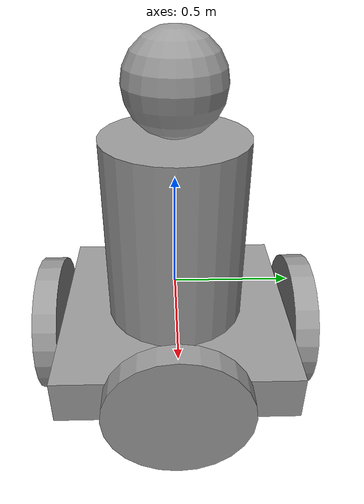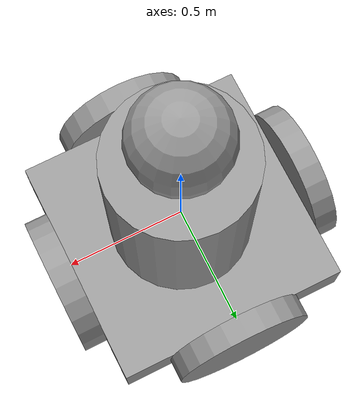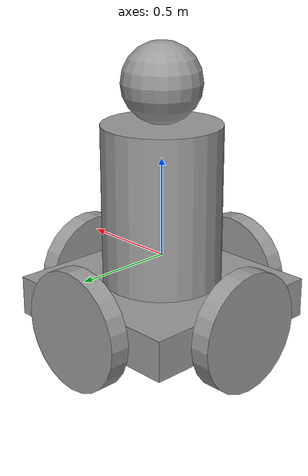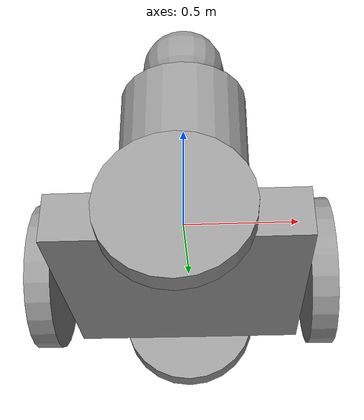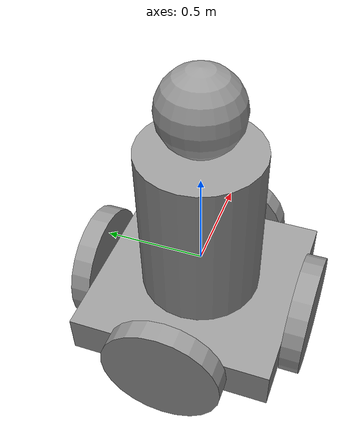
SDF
<?xml version='1.0'?>
<sdf version='1.6'>
  <model name='humanoid_robot'>
    <link name='link_2'>
      <pose frame=''>-0 -0 -0.228571 0 -0 0</pose>
      <inertial>
        <mass>1</mass>
        <inertia>
          <ixx>0.166667</ixx>
          <ixy>0</ixy>
          <ixz>0</ixz>
          <iyy>0.166667</iyy>
          <iyz>0</iyz>
          <izz>0.166667</izz>
        </inertia>
        <pose frame=''>0 0 0 0 -0 0</pose>
      </inertial>
      <gravity>1</gravity>
      <self_collide>0</self_collide>
      <kinematic>0</kinematic>
      <visual name='visual'>
        <pose frame=''>0 0 0 0 -0 0</pose>
        <geometry>
          <box>
            <size>1 1 0.2</size>
          </box>
        </geometry>
        <material>
          <lighting>1</lighting>
          <script>
            <uri>file://media/materials/scripts/gazebo.material</uri>
            <name>Gazebo/Grey</name>
          </script>
          <ambient>0.3 0.3 0.3 1</ambient>
          <diffuse>0.7 0.7 0.7 1</diffuse>
          <specular>0.01 0.01 0.01 1</specular>
          <emissive>0 0 0 1</emissive>
          <shader type='vertex'>
            <normal_map>__default__</normal_map>
          </shader>
        </material>
        <cast_shadows>1</cast_shadows>
        <transparency>0</transparency>
      </visual>
      <collision name='collision'>
        <laser_retro>0</laser_retro>
        <max_contacts>10</max_contacts>
        <pose frame=''>0 0 0 0 -0 0</pose>
        <geometry>
          <box>
            <size>1 1 0.2</size>
          </box>
        </geometry>
        <surface>
          <friction>
            <ode>
              <mu>1</mu>
              <mu2>1</mu2>
              <fdir1>0 0 0</fdir1>
              <slip1>0</slip1>
              <slip2>0</slip2>
            </ode>
            <torsional>
              <coefficient>1</coefficient>
              <patch_radius>0</patch_radius>
              <surface_radius>0</surface_radius>
              <use_patch_radius>1</use_patch_radius>
              <ode>
                <slip>0</slip>
              </ode>
            </torsional>
          </friction>
          <bounce>
            <restitution_coefficient>0</restitution_coefficient>
            <threshold>1e+06</threshold>
          </bounce>
          <contact>
            <collide_without_contact>0</collide_without_contact>
            <collide_without_contact_bitmask>1</collide_without_contact_bitmask>
            <collide_bitmask>1</collide_bitmask>
            <ode>
              <soft_cfm>0</soft_cfm>
              <soft_erp>0.2</soft_erp>
              <kp>1e+13</kp>
              <kd>1</kd>
              <max_vel>0.01</max_vel>
              <min_depth>0</min_depth>
            </ode>
            <bullet>
              <split_impulse>1</split_impulse>
              <split_impulse_penetration_threshold>-0.01</split_impulse_penetration_threshold>
              <soft_cfm>0</soft_cfm>
              <soft_erp>0.2</soft_erp>
              <kp>1e+13</kp>
              <kd>1</kd>
            </bullet>
          </contact>
        </surface>
      </collision>
    </link>
    <link name='link_3'>
      <pose frame=''>-0 -0.550029 -0.228571 1.5707 -0 0</pose>
      <inertial>
        <mass>1</mass>
        <inertia>
          <ixx>0.145833</ixx>
          <ixy>0</ixy>
          <ixz>0</ixz>
          <iyy>0.145833</iyy>
          <iyz>0</iyz>
          <izz>0.125</izz>
        </inertia>
        <pose frame=''>0 0 0 0 -0 0</pose>
      </inertial>
      <gravity>1</gravity>
      <self_collide>0</self_collide>
      <kinematic>0</kinematic>
      <visual name='visual'>
        <pose frame=''>0 0 0 0 -0 0</pose>
        <geometry>
          <cylinder>
            <radius>0.3</radius>
            <length>0.1</length>
          </cylinder>
        </geometry>
        <material>
          <lighting>1</lighting>
          <script>
            <uri>file://media/materials/scripts/gazebo.material</uri>
            <name>Gazebo/Grey</name>
          </script>
          <ambient>0.3 0.3 0.3 1</ambient>
          <diffuse>0.7 0.7 0.7 1</diffuse>
          <specular>0.01 0.01 0.01 1</specular>
          <emissive>0 0 0 1</emissive>
          <shader type='vertex'>
            <normal_map>__default__</normal_map>
          </shader>
        </material>
        <cast_shadows>1</cast_shadows>
        <transparency>0</transparency>
      </visual>
      <collision name='collision'>
        <laser_retro>0</laser_retro>
        <max_contacts>10</max_contacts>
        <pose frame=''>0 0 0 0 -0 0</pose>
        <geometry>
          <cylinder>
            <radius>0.3</radius>
            <length>0.1</length>
          </cylinder>
        </geometry>
        <surface>
          <friction>
            <ode>
              <mu>1</mu>
              <mu2>1</mu2>
              <fdir1>0 0 0</fdir1>
              <slip1>0</slip1>
              <slip2>0</slip2>
            </ode>
            <torsional>
              <coefficient>1</coefficient>
              <patch_radius>0</patch_radius>
              <surface_radius>0</surface_radius>
              <use_patch_radius>1</use_patch_radius>
              <ode>
                <slip>0</slip>
              </ode>
            </torsional>
          </friction>
          <bounce>
            <restitution_coefficient>0</restitution_coefficient>
            <threshold>1e+06</threshold>
          </bounce>
          <contact>
            <collide_without_contact>0</collide_without_contact>
            <collide_without_contact_bitmask>1</collide_without_contact_bitmask>
            <collide_bitmask>1</collide_bitmask>
            <ode>
              <soft_cfm>0</soft_cfm>
              <soft_erp>0.2</soft_erp>
              <kp>1e+13</kp>
              <kd>1</kd>
              <max_vel>0.01</max_vel>
              <min_depth>0</min_depth>
            </ode>
            <bullet>
              <split_impulse>1</split_impulse>
              <split_impulse_penetration_threshold>-0.01</split_impulse_penetration_threshold>
              <soft_cfm>0</soft_cfm>
              <soft_erp>0.2</soft_erp>
              <kp>1e+13</kp>
              <kd>1</kd>
            </bullet>
          </contact>
        </surface>
      </collision>
    </link>
    <link name='link_3_clone'>
      <pose frame=''>-0 0.550029 -0.228571 1.5707 -0 0</pose>
      <inertial>
        <mass>1</mass>
        <inertia>
          <ixx>0.145833</ixx>
          <ixy>0</ixy>
          <ixz>0</ixz>
          <iyy>0.145833</iyy>
          <iyz>0</iyz>
          <izz>0.125</izz>
        </inertia>
        <pose frame=''>0 0 0 0 -0 0</pose>
      </inertial>
      <self_collide>0</self_collide>
      <kinematic>0</kinematic>
      <visual name='visual'>
        <pose frame=''>0 0 0 0 -0 0</pose>
        <geometry>
          <cylinder>
            <radius>0.3</radius>
            <length>0.1</length>
          </cylinder>
        </geometry>
        <material>
          <lighting>1</lighting>
          <script>
            <uri>file://media/materials/scripts/gazebo.material</uri>
            <name>Gazebo/Grey</name>
          </script>
          <ambient>0.3 0.3 0.3 1</ambient>
          <diffuse>0.7 0.7 0.7 1</diffuse>
          <specular>0.01 0.01 0.01 1</specular>
          <emissive>0 0 0 1</emissive>
          <shader type='vertex'>
            <normal_map>__default__</normal_map>
          </shader>
        </material>
        <cast_shadows>1</cast_shadows>
        <transparency>0</transparency>
      </visual>
      <collision name='collision'>
        <laser_retro>0</laser_retro>
        <max_contacts>10</max_contacts>
        <pose frame=''>0 0 0 0 -0 0</pose>
        <geometry>
          <cylinder>
            <radius>0.3</radius>
            <length>0.1</length>
          </cylinder>
        </geometry>
        <surface>
          <friction>
            <ode>
              <mu>1</mu>
              <mu2>1</mu2>
              <fdir1>0 0 0</fdir1>
              <slip1>0</slip1>
              <slip2>0</slip2>
            </ode>
            <torsional>
              <coefficient>1</coefficient>
              <patch_radius>0</patch_radius>
              <surface_radius>0</surface_radius>
              <use_patch_radius>1</use_patch_radius>
              <ode>
                <slip>0</slip>
              </ode>
            </torsional>
          </friction>
          <bounce>
            <restitution_coefficient>0</restitution_coefficient>
            <threshold>1e+06</threshold>
          </bounce>
          <contact>
            <collide_without_contact>0</collide_without_contact>
            <collide_without_contact_bitmask>1</collide_without_contact_bitmask>
            <collide_bitmask>1</collide_bitmask>
            <ode>
              <soft_cfm>0</soft_cfm>
              <soft_erp>0.2</soft_erp>
              <kp>1e+13</kp>
              <kd>1</kd>
              <max_vel>0.01</max_vel>
              <min_depth>0</min_depth>
            </ode>
            <bullet>
              <split_impulse>1</split_impulse>
              <split_impulse_penetration_threshold>-0.01</split_impulse_penetration_threshold>
              <soft_cfm>0</soft_cfm>
              <soft_erp>0.2</soft_erp>
              <kp>1e+13</kp>
              <kd>1</kd>
            </bullet>
          </contact>
        </surface>
      </collision>
    </link>
    <link name='link_3_clone_0'>
      <pose frame=''>-0.550058 -0 -0.228571 1.5707 0 1.5707</pose>
      <inertial>
        <mass>1</mass>
        <inertia>
          <ixx>0.145833</ixx>
          <ixy>0</ixy>
          <ixz>0</ixz>
          <iyy>0.145833</iyy>
          <iyz>0</iyz>
          <izz>0.125</izz>
        </inertia>
        <pose frame=''>0 0 0 0 -0 0</pose>
      </inertial>
      <self_collide>0</self_collide>
      <kinematic>0</kinematic>
      <gravity>1</gravity>
      <visual name='visual'>
        <pose frame=''>0 0 0 0 -0 0</pose>
        <geometry>
          <cylinder>
            <radius>0.3</radius>
            <length>0.1</length>
          </cylinder>
        </geometry>
        <material>
          <lighting>1</lighting>
          <script>
            <uri>file://media/materials/scripts/gazebo.material</uri>
            <name>Gazebo/Grey</name>
          </script>
          <ambient>0.3 0.3 0.3 1</ambient>
          <diffuse>0.7 0.7 0.7 1</diffuse>
          <specular>0.01 0.01 0.01 1</specular>
          <emissive>0 0 0 1</emissive>
          <shader type='vertex'>
            <normal_map>__default__</normal_map>
          </shader>
        </material>
        <cast_shadows>1</cast_shadows>
        <transparency>0</transparency>
      </visual>
      <collision name='collision'>
        <laser_retro>0</laser_retro>
        <max_contacts>10</max_contacts>
        <pose frame=''>0 0 0 0 -0 0</pose>
        <geometry>
          <cylinder>
            <radius>0.3</radius>
            <length>0.1</length>
          </cylinder>
        </geometry>
        <surface>
          <friction>
            <ode>
              <mu>1</mu>
              <mu2>1</mu2>
              <fdir1>0 0 0</fdir1>
              <slip1>0</slip1>
              <slip2>0</slip2>
            </ode>
            <torsional>
              <coefficient>1</coefficient>
              <patch_radius>0</patch_radius>
              <surface_radius>0</surface_radius>
              <use_patch_radius>1</use_patch_radius>
              <ode>
                <slip>0</slip>
              </ode>
            </torsional>
          </friction>
          <bounce>
            <restitution_coefficient>0</restitution_coefficient>
            <threshold>1e+06</threshold>
          </bounce>
          <contact>
            <collide_without_contact>0</collide_without_contact>
            <collide_without_contact_bitmask>1</collide_without_contact_bitmask>
            <collide_bitmask>1</collide_bitmask>
            <ode>
              <soft_cfm>0</soft_cfm>
              <soft_erp>0.2</soft_erp>
              <kp>1e+13</kp>
              <kd>1</kd>
              <max_vel>0.01</max_vel>
              <min_depth>0</min_depth>
            </ode>
            <bullet>
              <split_impulse>1</split_impulse>
              <split_impulse_penetration_threshold>-0.01</split_impulse_penetration_threshold>
              <soft_cfm>0</soft_cfm>
              <soft_erp>0.2</soft_erp>
              <kp>1e+13</kp>
              <kd>1</kd>
            </bullet>
          </contact>
        </surface>
      </collision>
    </link>
    <link name='link_3_clone_0_clone'>
      <pose frame=''>0.550057 -0 -0.228571 1.5707 0 1.5707</pose>
      <inertial>
        <mass>1</mass>
        <inertia>
          <ixx>0.145833</ixx>
          <ixy>0</ixy>
          <ixz>0</ixz>
          <iyy>0.145833</iyy>
          <iyz>0</iyz>
          <izz>0.125</izz>
        </inertia>
        <pose frame=''>0 0 0 0 -0 0</pose>
      </inertial>
      <self_collide>0</self_collide>
      <kinematic>0</kinematic>
      <visual name='visual'>
        <pose frame=''>0 0 0 0 -0 0</pose>
        <geometry>
          <cylinder>
            <radius>0.3</radius>
            <length>0.1</length>
          </cylinder>
        </geometry>
        <material>
          <lighting>1</lighting>
          <script>
            <uri>file://media/materials/scripts/gazebo.material</uri>
            <name>Gazebo/Grey</name>
          </script>
          <ambient>0.3 0.3 0.3 1</ambient>
          <diffuse>0.7 0.7 0.7 1</diffuse>
          <specular>0.01 0.01 0.01 1</specular>
          <emissive>0 0 0 1</emissive>
          <shader type='vertex'>
            <normal_map>__default__</normal_map>
          </shader>
        </material>
        <cast_shadows>1</cast_shadows>
        <transparency>0</transparency>
      </visual>
      <collision name='collision'>
        <laser_retro>0</laser_retro>
        <max_contacts>10</max_contacts>
        <pose frame=''>0 0 0 0 -0 0</pose>
        <geometry>
          <cylinder>
            <radius>0.3</radius>
            <length>0.1</length>
          </cylinder>
        </geometry>
        <surface>
          <friction>
            <ode>
              <mu>1</mu>
              <mu2>1</mu2>
              <fdir1>0 0 0</fdir1>
              <slip1>0</slip1>
              <slip2>0</slip2>
            </ode>
            <torsional>
              <coefficient>1</coefficient>
              <patch_radius>0</patch_radius>
              <surface_radius>0</surface_radius>
              <use_patch_radius>1</use_patch_radius>
              <ode>
                <slip>0</slip>
              </ode>
            </torsional>
          </friction>
          <bounce>
            <restitution_coefficient>0</restitution_coefficient>
            <threshold>1e+06</threshold>
          </bounce>
          <contact>
            <collide_without_contact>0</collide_without_contact>
            <collide_without_contact_bitmask>1</collide_without_contact_bitmask>
            <collide_bitmask>1</collide_bitmask>
            <ode>
              <soft_cfm>0</soft_cfm>
              <soft_erp>0.2</soft_erp>
              <kp>1e+13</kp>
              <kd>1</kd>
              <max_vel>0.01</max_vel>
              <min_depth>0</min_depth>
            </ode>
            <bullet>
              <split_impulse>1</split_impulse>
              <split_impulse_penetration_threshold>-0.01</split_impulse_penetration_threshold>
              <soft_cfm>0</soft_cfm>
              <soft_erp>0.2</soft_erp>
              <kp>1e+13</kp>
              <kd>1</kd>
            </bullet>
          </contact>
        </surface>
      </collision>
    </link>
    <link name='link_5'>
      <pose frame=''>-0 -0 0.271429 0 -0 0</pose>
      <inertial>
        <mass>1</mass>
        <inertia>
          <ixx>0.145833</ixx>
          <ixy>0</ixy>
          <ixz>0</ixz>
          <iyy>0.145833</iyy>
          <iyz>0</iyz>
          <izz>0.125</izz>
        </inertia>
        <pose frame=''>0 0 0 0 -0 0</pose>
      </inertial>
      <gravity>1</gravity>
      <self_collide>0</self_collide>
      <kinematic>0</kinematic>
      <visual name='visual'>
        <pose frame=''>0 0 0 0 -0 0</pose>
        <geometry>
          <cylinder>
            <radius>0.3</radius>
            <length>0.8</length>
          </cylinder>
        </geometry>
        <material>
          <lighting>1</lighting>
          <script>
            <uri>file://media/materials/scripts/gazebo.material</uri>
            <name>Gazebo/Grey</name>
          </script>
          <ambient>0.3 0.3 0.3 1</ambient>
          <diffuse>0.7 0.7 0.7 1</diffuse>
          <specular>0.01 0.01 0.01 1</specular>
          <emissive>0 0 0 1</emissive>
          <shader type='vertex'>
            <normal_map>__default__</normal_map>
          </shader>
        </material>
        <cast_shadows>1</cast_shadows>
        <transparency>0</transparency>
      </visual>
      <collision name='collision'>
        <laser_retro>0</laser_retro>
        <max_contacts>10</max_contacts>
        <pose frame=''>0 0 0 0 -0 0</pose>
        <geometry>
          <cylinder>
            <radius>0.3</radius>
            <length>0.8</length>
          </cylinder>
        </geometry>
        <surface>
          <friction>
            <ode>
              <mu>1</mu>
              <mu2>1</mu2>
              <fdir1>0 0 0</fdir1>
              <slip1>0</slip1>
              <slip2>0</slip2>
            </ode>
            <torsional>
              <coefficient>1</coefficient>
              <patch_radius>0</patch_radius>
              <surface_radius>0</surface_radius>
              <use_patch_radius>1</use_patch_radius>
              <ode>
                <slip>0</slip>
              </ode>
            </torsional>
          </friction>
          <bounce>
            <restitution_coefficient>0</restitution_coefficient>
            <threshold>1e+06</threshold>
          </bounce>
          <contact>
            <collide_without_contact>0</collide_without_contact>
            <collide_without_contact_bitmask>1</collide_without_contact_bitmask>
            <collide_bitmask>1</collide_bitmask>
            <ode>
              <soft_cfm>0</soft_cfm>
              <soft_erp>0.2</soft_erp>
              <kp>1e+13</kp>
              <kd>1</kd>
              <max_vel>0.01</max_vel>
              <min_depth>0</min_depth>
            </ode>
            <bullet>
              <split_impulse>1</split_impulse>
              <split_impulse_penetration_threshold>-0.01</split_impulse_penetration_threshold>
              <soft_cfm>0</soft_cfm>
              <soft_erp>0.2</soft_erp>
              <kp>1e+13</kp>
              <kd>1</kd>
            </bullet>
          </contact>
        </surface>
      </collision>
    </link>
    <link name='link_6'>
      <pose frame=''>-0 -0 0.871429 0 -0 0</pose>
      <inertial>
        <mass>1</mass>
        <inertia>
          <ixx>0.1</ixx>
          <ixy>0</ixy>
          <ixz>0</ixz>
          <iyy>0.1</iyy>
          <iyz>0</iyz>
          <izz>0.1</izz>
        </inertia>
        <pose frame=''>0 0 0 0 -0 0</pose>
      </inertial>
      <gravity>1</gravity>
      <self_collide>0</self_collide>
      <kinematic>0</kinematic>
      <visual name='visual'>
        <pose frame=''>0 0 0 0 -0 0</pose>
        <geometry>
          <sphere>
            <radius>0.2</radius>
          </sphere>
        </geometry>
        <material>
          <lighting>1</lighting>
          <script>
            <uri>file://media/materials/scripts/gazebo.material</uri>
            <name>Gazebo/Grey</name>
          </script>
          <ambient>0.3 0.3 0.3 1</ambient>
          <diffuse>0.7 0.7 0.7 1</diffuse>
          <specular>0.01 0.01 0.01 1</specular>
          <emissive>0 0 0 1</emissive>
          <shader type='vertex'>
            <normal_map>__default__</normal_map>
          </shader>
        </material>
        <cast_shadows>1</cast_shadows>
        <transparency>0</transparency>
      </visual>
      <collision name='collision'>
        <laser_retro>0</laser_retro>
        <max_contacts>10</max_contacts>
        <pose frame=''>0 0 0 0 -0 0</pose>
        <geometry>
          <sphere>
            <radius>0.2</radius>
          </sphere>
        </geometry>
        <surface>
          <friction>
            <ode>
              <mu>1</mu>
              <mu2>1</mu2>
              <fdir1>0 0 0</fdir1>
              <slip1>0</slip1>
              <slip2>0</slip2>
            </ode>
            <torsional>
              <coefficient>1</coefficient>
              <patch_radius>0</patch_radius>
              <surface_radius>0</surface_radius>
              <use_patch_radius>1</use_patch_radius>
              <ode>
                <slip>0</slip>
              </ode>
            </torsional>
          </friction>
          <bounce>
            <restitution_coefficient>0</restitution_coefficient>
            <threshold>1e+06</threshold>
          </bounce>
          <contact>
            <collide_without_contact>0</collide_without_contact>
            <collide_without_contact_bitmask>1</collide_without_contact_bitmask>
            <collide_bitmask>1</collide_bitmask>
            <ode>
              <soft_cfm>0</soft_cfm>
              <soft_erp>0.2</soft_erp>
              <kp>1e+13</kp>
              <kd>1</kd>
              <max_vel>0.01</max_vel>
              <min_depth>0</min_depth>
            </ode>
            <bullet>
              <split_impulse>1</split_impulse>
              <split_impulse_penetration_threshold>-0.01</split_impulse_penetration_threshold>
              <soft_cfm>0</soft_cfm>
              <soft_erp>0.2</soft_erp>
              <kp>1e+13</kp>
              <kd>1</kd>
            </bullet>
          </contact>
        </surface>
      </collision>
    </link>
    <joint name='link_2_JOINT_0' type='revolute'>
      <parent>link_2</parent>
      <child>link_3</child>
      <pose frame=''>0 0 0 0 -0 0</pose>
      <axis>
        <xyz>0 0 -1</xyz>
        <use_parent_model_frame>0</use_parent_model_frame>
        <limit>
          <lower>-1.79769e+308</lower>
          <upper>1.79769e+308</upper>
          <effort>-1</effort>
          <velocity>-1</velocity>
        </limit>
        <dynamics>
          <spring_reference>0</spring_reference>
          <spring_stiffness>0</spring_stiffness>
          <damping>0</damping>
          <friction>0</friction>
        </dynamics>
      </axis>
      <physics>
        <ode>
          <limit>
            <cfm>0</cfm>
            <erp>0.2</erp>
          </limit>
          <suspension>
            <cfm>0</cfm>
            <erp>0.2</erp>
          </suspension>
        </ode>
      </physics>
    </joint>
    <joint name='link_2_JOINT_1' type='revolute'>
      <parent>link_2</parent>
      <child>link_3_clone</child>
      <pose frame=''>0 0 0 0 -0 0</pose>
      <axis>
        <xyz>0 0 1</xyz>
        <use_parent_model_frame>0</use_parent_model_frame>
        <limit>
          <lower>-1.79769e+308</lower>
          <upper>1.79769e+308</upper>
          <effort>-1</effort>
          <velocity>-1</velocity>
        </limit>
        <dynamics>
          <spring_reference>0</spring_reference>
          <spring_stiffness>0</spring_stiffness>
          <damping>0</damping>
        </dynamics>
      </axis>
      <physics>
        <ode>
          <limit>
            <cfm>0</cfm>
            <erp>0.2</erp>
          </limit>
          <suspension>
            <cfm>0</cfm>
            <erp>0.2</erp>
          </suspension>
        </ode>
      </physics>
    </joint>
    <joint name='link_2_JOINT_2' type='revolute'>
      <parent>link_2</parent>
      <child>link_3_clone_0</child>
      <pose frame=''>0 0 0 0 -0 0</pose>
      <axis>
        <xyz>0 0 1</xyz>
        <use_parent_model_frame>0</use_parent_model_frame>
        <limit>
          <lower>-1.79769e+308</lower>
          <upper>1.79769e+308</upper>
          <effort>-1</effort>
          <velocity>-1</velocity>
        </limit>
        <dynamics>
          <spring_reference>0</spring_reference>
          <spring_stiffness>0</spring_stiffness>
          <damping>0</damping>
        </dynamics>
      </axis>
      <physics>
        <ode>
          <limit>
            <cfm>0</cfm>
            <erp>0.2</erp>
          </limit>
          <suspension>
            <cfm>0</cfm>
            <erp>0.2</erp>
          </suspension>
        </ode>
      </physics>
    </joint>
    <joint name='link_2_JOINT_3' type='revolute'>
      <parent>link_2</parent>
      <child>link_3_clone_0_clone</child>
      <pose frame=''>0 0 0 0 -0 0</pose>
      <axis>
        <xyz>0 0 -1</xyz>
        <use_parent_model_frame>0</use_parent_model_frame>
        <limit>
          <lower>-1.79769e+308</lower>
          <upper>1.79769e+308</upper>
          <effort>-1</effort>
          <velocity>-1</velocity>
        </limit>
        <dynamics>
          <spring_reference>0</spring_reference>
          <spring_stiffness>0</spring_stiffness>
          <damping>0</damping>
          <friction>0</friction>
        </dynamics>
      </axis>
      <physics>
        <ode>
          <limit>
            <cfm>0</cfm>
            <erp>0.2</erp>
          </limit>
          <suspension>
            <cfm>0</cfm>
            <erp>0.2</erp>
          </suspension>
        </ode>
      </physics>
    </joint>
    <joint name='link_2_JOINT_6' type='fixed'>
      <parent>link_2</parent>
      <child>link_5</child>
      <pose frame=''>0 0 0 0 -0 0</pose>
      <physics>
        <ode>
          <limit>
            <cfm>0</cfm>
            <erp>0.2</erp>
          </limit>
          <suspension>
            <cfm>0</cfm>
            <erp>0.2</erp>
          </suspension>
        </ode>
      </physics>
    </joint>
    <joint name='link_5_JOINT_7' type='revolute'>
      <parent>link_5</parent>
      <child>link_6</child>
      <pose frame=''>0 0 0 0 -0 0</pose>
      <axis>
        <xyz>1 0 0</xyz>
        <use_parent_model_frame>0</use_parent_model_frame>
        <limit>
          <lower>-1.79769e+308</lower>
          <upper>1.79769e+308</upper>
          <effort>-1</effort>
          <velocity>-1</velocity>
        </limit>
        <dynamics>
          <spring_reference>0</spring_reference>
          <spring_stiffness>0</spring_stiffness>
          <damping>0</damping>
        </dynamics>
      </axis>
      <physics>
        <ode>
          <limit>
            <cfm>0</cfm>
            <erp>0.2</erp>
          </limit>
          <suspension>
            <cfm>0</cfm>
            <erp>0.2</erp>
          </suspension>
        </ode>
      </physics>
    </joint>
    <static>0</static>
    <allow_auto_disable>1</allow_auto_disable>
  </model>
</sdf>
